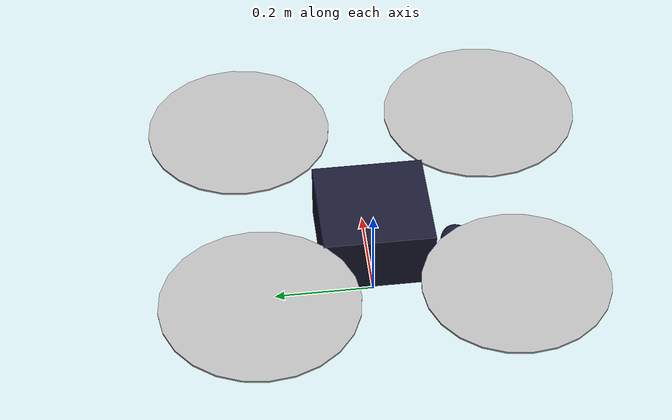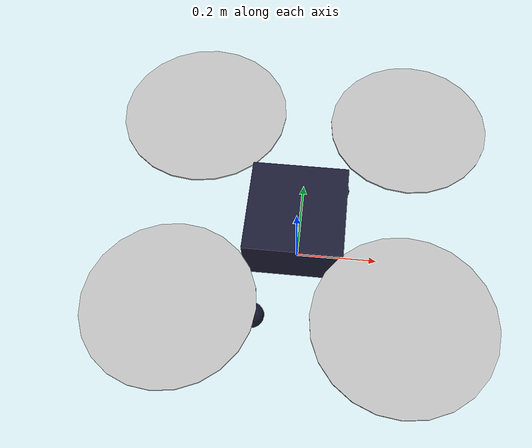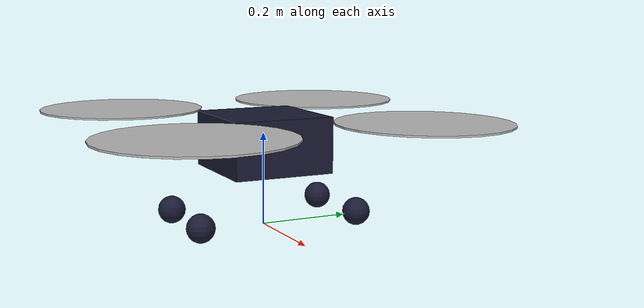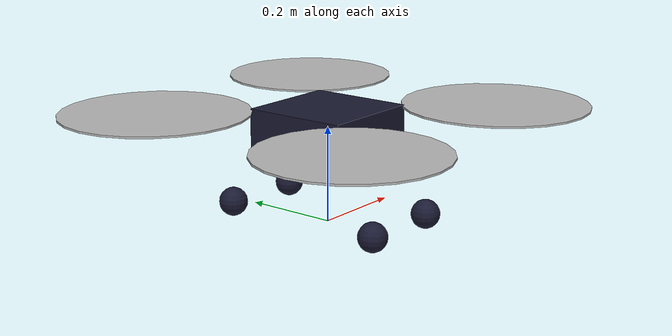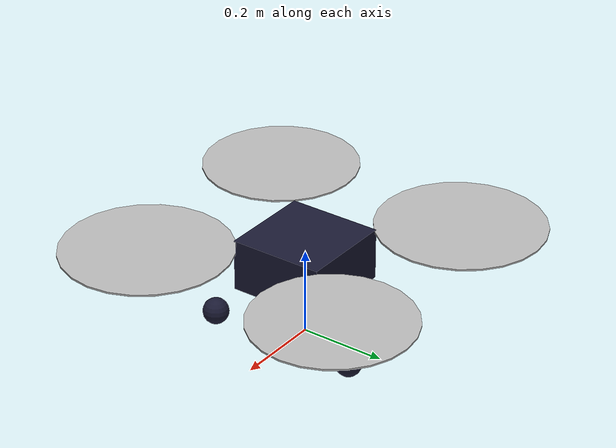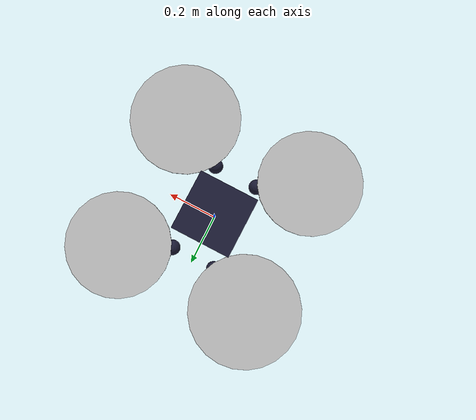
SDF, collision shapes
<?xml version="1.0" encoding="UTF-8"?>
<sdf version='1.9'>
  <model name='homebrew_base'>
    <pose>0 0 .162 0 0 0</pose>
    <self_collide>false</self_collide>
    <static>false</static>
    <link name="base_link">
      <self_collide>false</self_collide>
      <gravity>true</gravity>
      <velocity_decay/>

      <!-- Taken from Mingyuan Gao's SOLIDWORKS model--->
      <inertial>
        <mass>2.27304650076778</mass>
        <inertia>
          <ixx>0.0042284876572578</ixx>
          <ixy>0</ixy>
          <ixz>0</ixz>
          <iyy>0.00572258822097371</iyy>
          <iyz>0</iyz>
          <izz>0.00831273635864134</izz>
        </inertia>
      </inertial>

      <visual name="base_link_visual">
        <material>
          <ambient>0.1 0.1 0.1 1</ambient>
          <diffuse>0.1 0.1 0.2 1</diffuse>
          <specular>0 0 0 0</specular>
          <emissive>0 0 0 1</emissive>
        </material>
        <pose>0 0 0 0 0 0</pose>
        <geometry>
          <mesh>
            <scale>1 1 1</scale>
            <uri>model://homebrew_base/meshes/base_link.stl</uri>
          </mesh>
        </geometry>
      </visual>

      <collision name="base_link_collision_pod">
        <pose>0 0 0.02 0 0 0</pose>
        <geometry>
          <box>
            <size>0.22 0.22 0.12</size>
          </box>
        </geometry>
        <surface>
          <contact>
            <ode>
              <min_depth>0.001</min_depth>
              <max_vel>0</max_vel>
            </ode>
          </contact>
          <friction>
            <ode/>
          </friction>
        </surface>
      </collision>
      <collision name="foot_fl_collision">
        <pose>0.09 0.18 -0.1325 0 0 0</pose>
        <geometry>
          <sphere>
            <radius>0.03</radius>
          </sphere>
        </geometry>
        <surface>
          <contact>
            <ode>
              <min_depth>0.001</min_depth>
              <max_vel>0</max_vel>
            </ode>
          </contact>
          <friction>
            <ode/>
          </friction>
        </surface>
      </collision>
      <collision name="foot_fr_collision">
        <pose>0.09 -0.18 -0.1325 0 0 0</pose>
        <geometry>
          <sphere>
            <radius>0.03</radius>
          </sphere>
        </geometry>
        <surface>
          <contact>
            <ode>
              <min_depth>0.001</min_depth>
              <max_vel>0</max_vel>
            </ode>
          </contact>
          <friction>
            <ode/>
          </friction>
        </surface>
      </collision>
      <collision name="foot_bl_collision">
        <pose>-0.09 0.18 -0.1325 0 0 0</pose>
        <geometry>
          <sphere>
            <radius>0.03</radius>
          </sphere>
        </geometry>
        <surface>
          <contact>
            <ode>
              <min_depth>0.001</min_depth>
              <max_vel>0</max_vel>
            </ode>
          </contact>
          <friction>
            <ode/>
          </friction>
        </surface>
      </collision>
      <collision name="foot_br_collision">
        <pose>-0.09 -0.18 -0.1325 0 0 0</pose>
        <geometry>
          <sphere>
            <radius>0.03</radius>
          </sphere>
        </geometry>
        <surface>
          <contact>
            <ode>
              <min_depth>0.001</min_depth>
              <max_vel>0</max_vel>
            </ode>
          </contact>
          <friction>
            <ode/>
          </friction>
        </surface>
      </collision>

      <sensor name="air_pressure_sensor" type="air_pressure">
        <always_on>1</always_on>
        <update_rate>50</update_rate>
        <air_pressure>
          <!-- Noise modeled after BMP390 -->
          <pressure>
            <noise type="gaussian">
              <mean>0</mean>
              <stddev>3</stddev>
            </noise>
          </pressure>
        </air_pressure>
      </sensor>
      <sensor name="magnetometer_sensor" type="magnetometer">
        <always_on>1</always_on>
        <update_rate>100</update_rate>
        <magnetometer>
          <!-- 3mgauss RMS: NOTE: noise is in tesla but sensor reports data in gauss -->
          <!-- Noise modeled after IIS2MDC (from the x500 model)-->
          <x>
            <noise type="gaussian">
              <stddev>0.0001</stddev>
            </noise>
          </x>
          <y>
            <noise type="gaussian">
              <stddev>0.0001</stddev>
            </noise>
          </y>
          <z>
            <noise type="gaussian">
              <stddev>0.0001</stddev>
            </noise>
          </z>
        </magnetometer>
      </sensor>
      <sensor name="imu_sensor" type="imu">
        <always_on>1</always_on>
        <update_rate>250</update_rate>
        <imu>
          <angular_velocity>
            <!-- Noise modeled after IIM42653 (from the x500 model)-->
            <!-- 0.05 deg/s converted to rad/s -->
            <x>
              <noise type="gaussian">
                <mean>0.0</mean>
                <stddev>0.0008726646</stddev>
              </noise>
            </x>
            <y>
              <noise type="gaussian">
                <mean>0.0</mean>
                <stddev>0.0008726646</stddev>
              </noise>
            </y>
            <z>
              <noise type="gaussian">
                <mean>0.0</mean>
                <stddev>0.0008726646</stddev>
              </noise>
            </z>
          </angular_velocity>
          <linear_acceleration>
            <!-- Noise modeled after IIM42653 (from the x500 model) -->
            <!-- X & Y axis: 0.65 mg-rms converted to m/ss -->
            <x>
              <noise type="gaussian">
                <mean>0.0</mean>
                <stddev>0.00637</stddev>
              </noise>
            </x>
            <y>
              <noise type="gaussian">
                <mean>0.0</mean>
                <stddev>0.00637</stddev>
              </noise>
            </y>
            <!-- Z axis: 0.70 mg-rms converted to m/ss-->
            <z>
              <noise type="gaussian">
                <mean>0.0</mean>
                <stddev>0.00686</stddev>
              </noise>
            </z>
          </linear_acceleration>
        </imu>
      </sensor>
      <sensor name="navsat_sensor" type="navsat">
        <always_on>1</always_on>
        <update_rate>30</update_rate>
        <navsat>
          <position_sensing>
            <horizontal>
              <!-- 2cm 1-sigma horizontal (RTK-level): 0.02 / 103784 m/deg -->
              <noise type="gaussian">
                <mean>0</mean>
                <stddev>1.927e-07</stddev>
              </noise>
            </horizontal>
            <vertical>
              <!-- 3cm 1-sigma vertical (RTK vertical is typically somewhat
                   worse than horizontal) -->
              <noise type="gaussian">
                <mean>0</mean>
                <stddev>0.03</stddev>
              </noise>
            </vertical>
          </position_sensing>
          <velocity_sensing>
            <horizontal>
              <!-- 2cm/s 1-sigma horizontal velocity (RTK-level Doppler) -->
              <noise type="gaussian">
                <mean>0</mean>
                <stddev>0.02</stddev>
              </noise>
            </horizontal>
            <vertical>
              <!-- 3cm/s 1-sigma vertical velocity -->
              <noise type="gaussian">
                <mean>0</mean>
                <stddev>0.03</stddev>
              </noise>
            </vertical>
          </velocity_sensing>
        </navsat>
      </sensor>

    </link>
    <link name="rotor_0">
      <gravity>true</gravity>
      <self_collide>false</self_collide>
      <velocity_decay/>
      <pose>0.2418 -0.2446 0.076024 0 0 0</pose><!--motor poses are fine-->
      <inertial>
        <!-- Mass/inertia from T-Motor U5 KV400 (Homebrew's motors) datasheet (156g, Φ42.5x37.5mm), inertia estimated as a solid cylinder -->
        <pose>0 0 0.006 0 0 0</pose>
        <mass>0.156</mass>
        <inertia>
          <ixx>0.00003589</ixx>
          <ixy>0</ixy>
          <ixz>0</ixz>
          <iyy>0.00003589</iyy>
          <iyz>0</iyz>
          <izz>0.00003522</izz>
        </inertia>
      </inertial>
      <!-- Own CAD: this mesh is the combined motor+prop assembly, not motor-only -->
      <visual name="rotor_0_visual">
        <pose>0 0 0 0 0 0</pose>
        <geometry>
          <mesh>
            <scale>1 1 1</scale>
            <uri>model://homebrew_base/meshes/motor_ccw.stl</uri>
          </mesh>
        </geometry>
      </visual>
      <collision name="rotor_0_collision">
        <pose>0 0 0 0 0 0</pose>
        <geometry>
          <cylinder>
            <radius>0.193</radius>
            <length>0.004</length>
          </cylinder>
        </geometry>
        <surface>
          <contact>
            <ode>
              <min_depth>0.001</min_depth>
              <max_vel>0</max_vel>
            </ode>
          </contact>
          <friction>
            <ode/>
          </friction>
        </surface>
      </collision>
    </link>
    <joint name="rotor_0_joint" type="revolute">
      <parent>base_link</parent>
      <child>rotor_0</child>
      <axis>
        <xyz>0 0 1</xyz>
        <limit>
          <lower>-1e+16</lower>
          <upper>1e+16</upper>
        </limit>
        <dynamics>
          <spring_reference>0</spring_reference>
          <spring_stiffness>0</spring_stiffness>
        </dynamics>
      </axis>
    </joint>

    <link name="rotor_1">
      <gravity>true</gravity>
      <self_collide>false</self_collide>
      <velocity_decay/>
      <pose>-0.2418 0.2446 0.076024 0 0 0</pose>
      <inertial>
        <!-- Mass/inertia from T-Motor U5 KV400 datasheet (156g, Φ42.5x37.5mm), inertia estimated as a solid cylinder -->
        <pose>0 0 0.006 0 0 0</pose>
        <mass>0.156</mass>
        <inertia>
          <ixx>0.00003589</ixx>
          <ixy>0</ixy>
          <ixz>0</ixz>
          <iyy>0.00003589</iyy>
          <iyz>0</iyz>
          <izz>0.00003522</izz>
        </inertia>
      </inertial>
      <!-- Own CAD: this mesh is the combined motor+prop assembly, not motor-only -->
      <visual name="rotor_1_visual">
        <pose>0 0 0 0 0 0</pose>
        <geometry>
          <mesh>
            <scale>1 1 1</scale>
            <uri>model://homebrew_base/meshes/motor_ccw.stl</uri>
          </mesh>
        </geometry>
      </visual>
      <!-- Thin disc - see rotor_0_collision. Radius from motor_ccw.stl. -->
      <collision name="rotor_1_collision">
        <pose>0 0 0 0 0 0</pose>
        <geometry>
          <cylinder>
            <radius>0.193</radius>
            <length>0.004</length>
          </cylinder>
        </geometry>
        <surface>
          <contact>
            <ode>
              <min_depth>0.001</min_depth>
              <max_vel>0</max_vel>
            </ode>
          </contact>
          <friction>
            <ode/>
          </friction>
        </surface>
      </collision>
    </link>
    <joint name="rotor_1_joint" type="revolute">
      <parent>base_link</parent>
      <child>rotor_1</child>
      <axis>
        <xyz>0 0 1</xyz>
        <limit>
          <lower>-1e+16</lower>
          <upper>1e+16</upper>
        </limit>
        <dynamics>
          <spring_reference>0</spring_reference>
          <spring_stiffness>0</spring_stiffness>
        </dynamics>
      </axis>
    </joint>

    <link name="rotor_2">
      <gravity>true</gravity>
      <self_collide>false</self_collide>
      <velocity_decay/>
      <pose>0.2418 0.2446 0.0760238662373196 0 0 0</pose>
      <inertial>
        <!-- Mass/inertia from T-Motor U5 KV400 datasheet (156g, Φ42.5x37.5mm), inertia estimated as a solid cylinder -->
        <pose>0 0 0.006 0 0 0</pose>
        <mass>0.156</mass>
        <inertia>
          <ixx>0.00003589</ixx>
          <ixy>0</ixy>
          <ixz>0</ixz>
          <iyy>0.00003589</iyy>
          <iyz>0</iyz>
          <izz>0.00003522</izz>
        </inertia>
      </inertial>
      <!-- Own CAD: this mesh is the combined motor+prop assembly, not motor-only -->
      <visual name="rotor_2_visual">
        <pose>0 0 0 0 0 0</pose>
        <geometry>
          <mesh>
            <scale>1 1 1</scale>
            <uri>model://homebrew_base/meshes/motor_cw.stl</uri>
          </mesh>
        </geometry>
      </visual>
      <!-- Thin disc - see rotor_0_collision. Radius = prop half-span from
           motor_cw.stl (0.3646 / 2). -->
      <collision name="rotor_2_collision">
        <pose>0 0 0 0 0 0</pose>
        <geometry>
          <cylinder>
            <radius>0.182</radius>
            <length>0.004</length>
          </cylinder>
        </geometry>
        <surface>
          <contact>
            <ode>
              <min_depth>0.001</min_depth>
              <max_vel>0</max_vel>
            </ode>
          </contact>
          <friction>
            <ode/>
          </friction>
        </surface>
      </collision>
    </link>
    <joint name="rotor_2_joint" type="revolute">
      <parent>base_link</parent>
      <child>rotor_2</child>
      <axis>
        <xyz>0 0 1</xyz>
        <limit>
          <lower>-1e+16</lower>
          <upper>1e+16</upper>
        </limit>
        <dynamics>
          <spring_reference>0</spring_reference>
          <spring_stiffness>0</spring_stiffness>
        </dynamics>
      </axis>
    </joint>

    <link name="rotor_3">
      <gravity>true</gravity>
      <self_collide>false</self_collide>
      <velocity_decay/>
      <pose>-0.2418 -0.2446 0.0760238662373188 0 0 0</pose>
      <inertial>
        <!-- Mass/inertia from T-Motor U5 KV400 datasheet (156g, Φ42.5x37.5mm), inertia estimated as a solid cylinder -->
        <pose>0 0 0.006 0 0 0</pose>
        <mass>0.156</mass>
        <inertia>
          <ixx>0.00003589</ixx>
          <ixy>0</ixy>
          <ixz>0</ixz>
          <iyy>0.00003589</iyy>
          <iyz>0</iyz>
          <izz>0.00003522</izz>
        </inertia>
      </inertial>
      <!-- Own CAD: this mesh is the combined motor+prop assembly, not motor-only -->
      <visual name="rotor_3_visual">
        <pose>0 0 0 0 0 0</pose>
        <geometry>
          <mesh>
            <scale>1 1 1</scale>
            <uri>model://homebrew_base/meshes/motor_cw.stl</uri>
          </mesh>
        </geometry>
      </visual>
      <!-- Thin disc - see rotor_0_collision. Radius from motor_cw.stl. -->
      <collision name="rotor_3_collision">
        <pose>0 0 0 0 0 0</pose>
        <geometry>
          <cylinder>
            <radius>0.182</radius>
            <length>0.004</length>
          </cylinder>
        </geometry>
        <surface>
          <contact>
            <ode>
              <min_depth>0.001</min_depth>
              <max_vel>0</max_vel>
            </ode>
          </contact>
          <friction>
            <ode/>
          </friction>
        </surface>
      </collision>
    </link>
    <joint name="rotor_3_joint" type="revolute">
      <parent>base_link</parent>
      <child>rotor_3</child>
      <axis>
        <xyz>0 0 1</xyz>
        <limit>
          <lower>-1e+16</lower>
          <upper>1e+16</upper>
        </limit>
        <dynamics>
          <spring_reference>0</spring_reference>
          <spring_stiffness>0</spring_stiffness>
        </dynamics>
      </axis>
    </joint>

  </model>
</sdf>
